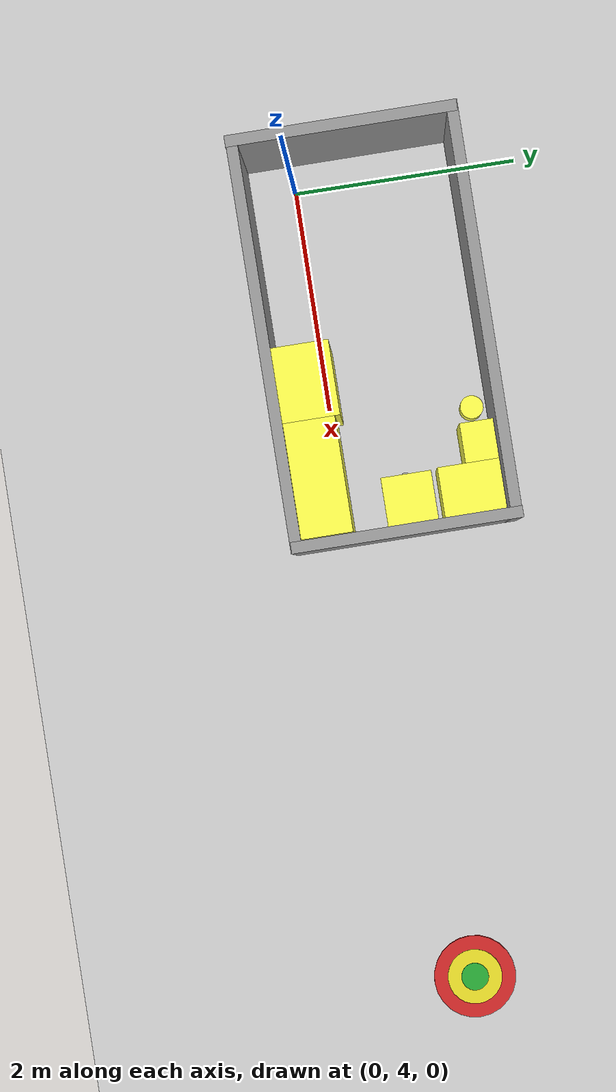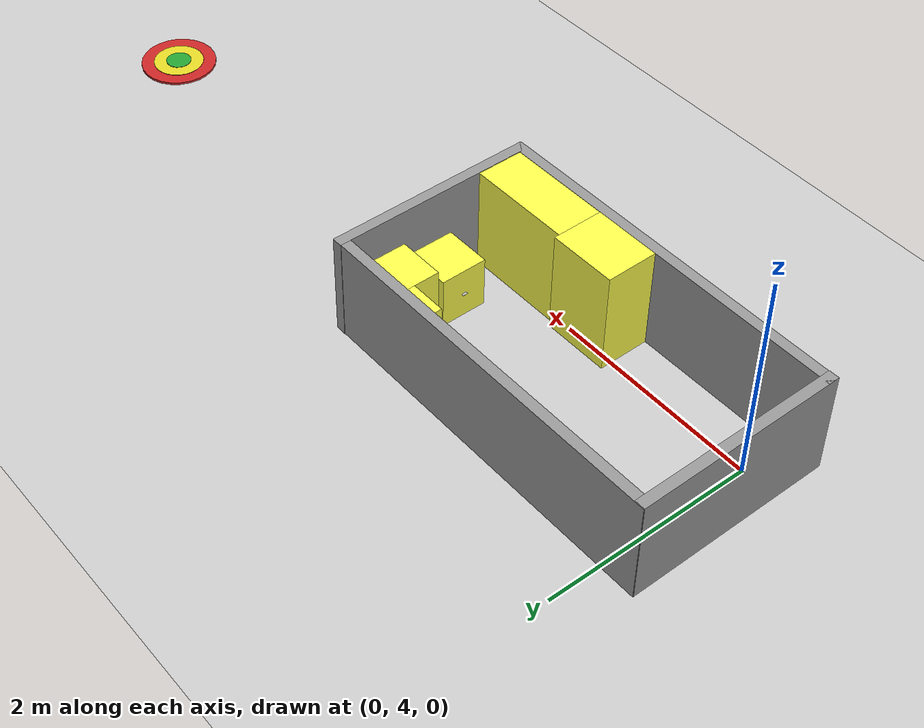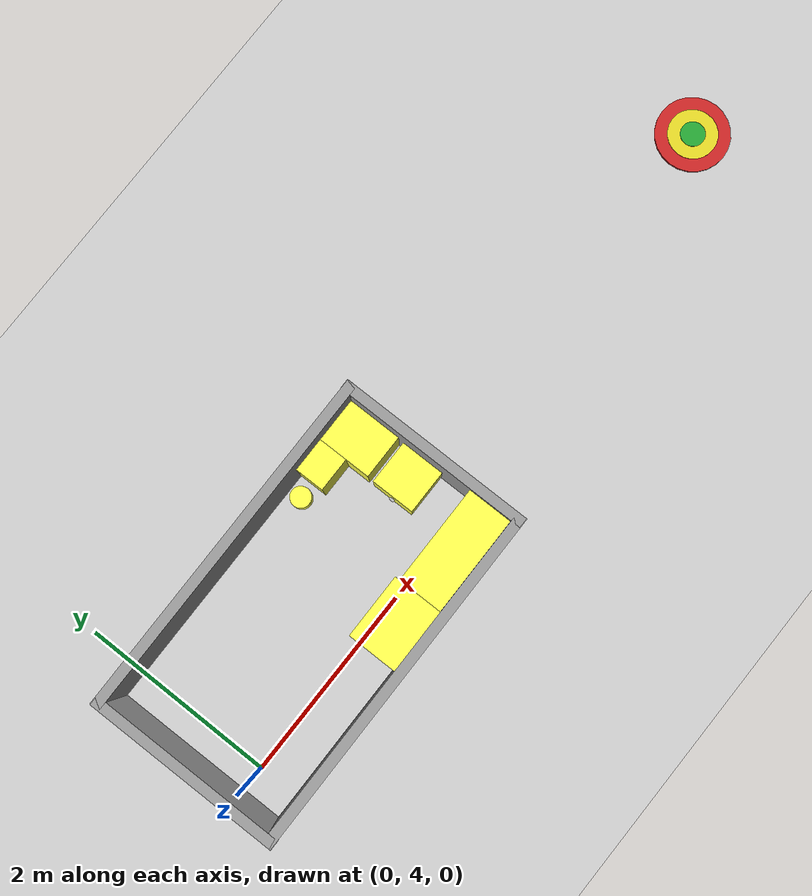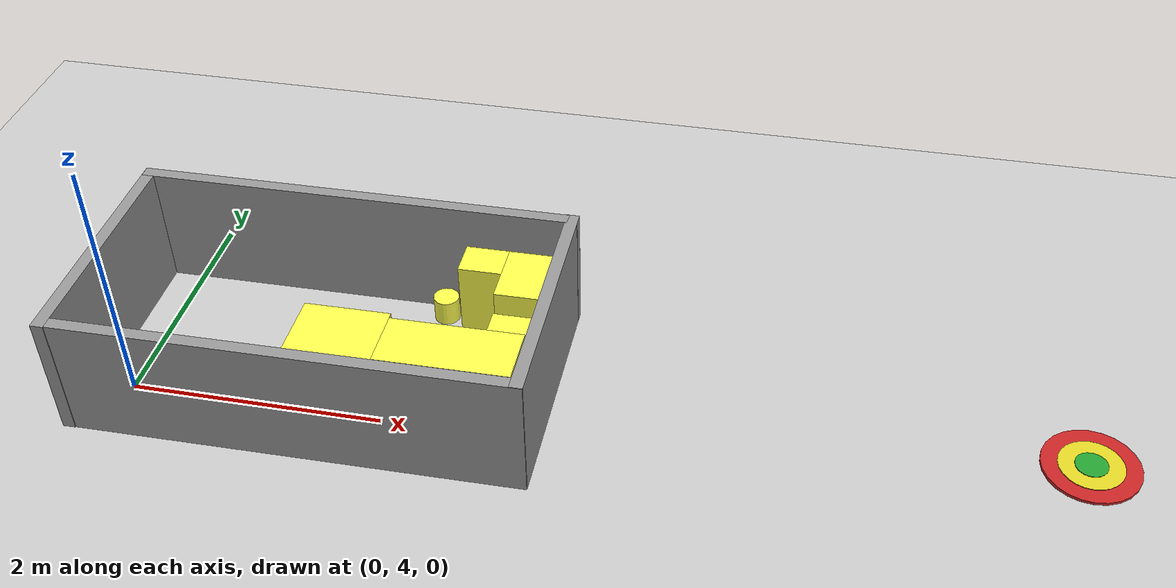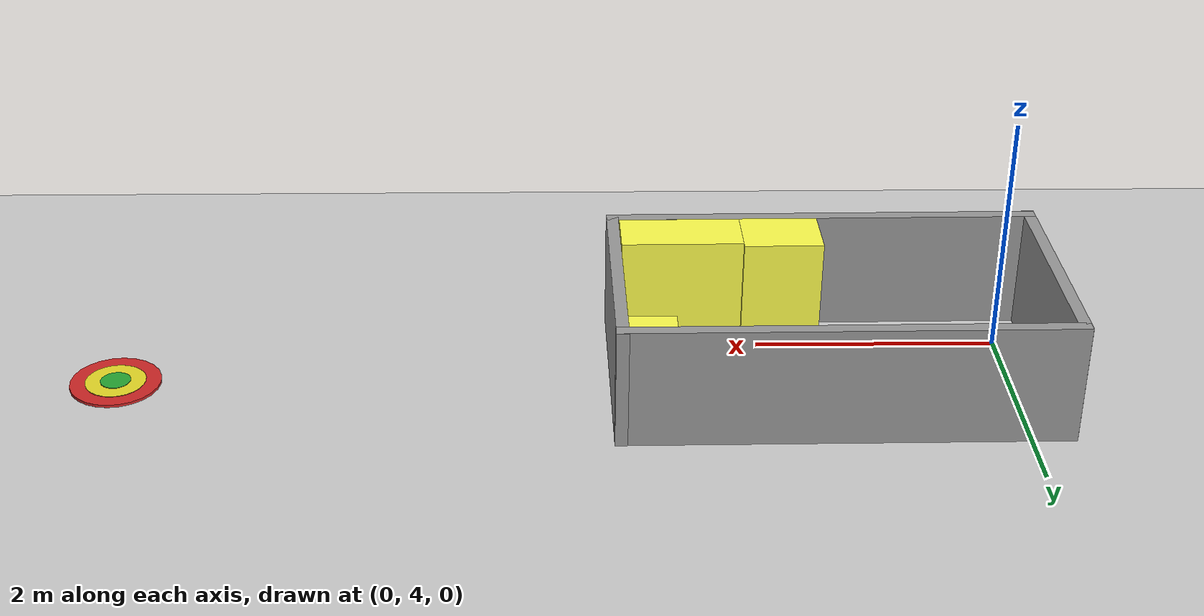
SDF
<sdf version="1.7">
 <world name="default">
  <light name="sun" type="directional">
   <pose>0 0 10 0 -0 0</pose>
   <diffuse>0.8 0.8 0.8 1</diffuse>
   <specular>0.2 0.2 0.2 1</specular>
   <attenuation>
    <range>1000</range>
    <constant>0.9</constant>
    <linear>0.01</linear>
    <quadratic>0.001</quadratic>
   </attenuation>
   <direction>-0.5 0.1 -0.9</direction>
   <spot><inner_angle>0</inner_angle><outer_angle>0</outer_angle><falloff>0</falloff></spot>
  </light>
  <model name="ground_plane">
   <static>1</static>
   <link name="link">
    <collision name="collision">
     <geometry><plane><normal>0 0 1</normal><size>100 100</size></plane></geometry>
     <surface>
      <contact><collide_bitmask>65535</collide_bitmask></contact>
      <friction><ode><mu>100</mu><mu2>50</mu2></ode></friction>
     </surface>
    </collision>
    <visual name="visual">
     <cast_shadows>0</cast_shadows>
     <geometry><plane><normal>0 0 1</normal><size>100 100</size></plane></geometry>
     <material>
      <script><uri>file://media/materials/scripts/gazebo.material</uri><name>Gazebo/Grey</name></script>
     </material>
    </visual>
   </link>
  </model>
  <gravity>0 0 -9.8</gravity>
  <magnetic_field>6e-06 2.3e-05 -4.2e-05</magnetic_field>
  <atmosphere type="adiabatic"/>
  <physics type="ode">
   <max_step_size>0.001</max_step_size>
   <real_time_update_rate>1000</real_time_update_rate>
   <real_time_factor>1</real_time_factor>
  </physics>
  <scene><ambient>0.4 0.4 0.4 1</ambient><background>0.7 0.7 0.7 1</background><shadows>1</shadows></scene>
  <audio><device>default</device></audio>
  <spherical_coordinates>
   <surface_model>EARTH_WGS84</surface_model>
   <latitude_deg>0</latitude_deg>
   <longitude_deg>0</longitude_deg>
   <elevation>0</elevation>
   <heading_deg>0</heading_deg>
  </spherical_coordinates>
  <model name="Target_clone">
   <static>1</static>
   <link name="green">
    <visual name="visual">
     <geometry><cylinder><radius>0.123824</radius><length>0.05</length></cylinder></geometry>
     <material>
      <script><uri>file://media/materials/scripts/gazebo.material</uri><name>Gazebo/Green</name></script>
      <ambient>1 1 1 1</ambient>
     </material>
     <cast_shadows>0</cast_shadows>
    </visual>
   </link>
   <link name="yellow">
    <visual name="visual">
     <geometry><cylinder><radius>0.247647</radius><length>0.04</length></cylinder></geometry>
     <material>
      <script><uri>file://media/materials/scripts/gazebo.material</uri><name>Gazebo/Yellow</name></script>
      <ambient>1 1 1 1</ambient>
     </material>
     <cast_shadows>0</cast_shadows>
    </visual>
   </link>
   <link name="red">
    <visual name="visual">
     <geometry><cylinder><radius>0.371471</radius><length>0.03</length></cylinder></geometry>
     <material>
      <script><uri>file://media/materials/scripts/gazebo.material</uri><name>Gazebo/Red</name></script>
      <ambient>1 1 1 1</ambient>
     </material>
     <cast_shadows>0</cast_shadows>
    </visual>
   </link>
   <pose>7.28043 4.53296 0 0 -0 0</pose>
  </model>
  <model name="maze_d">
   <link name="Wall_11">
    <pose>-3.06869 3.88249 0 0 0 -1.5708</pose>
    <inertial>
     <mass>1</mass>
     <inertia><ixx>1</ixx><ixy>0</ixy><ixz>0</ixz><iyy>1</iyy><iyz>0</iyz><izz>1</izz></inertia>
    </inertial>
    <visual name="Wall_11_Visual">
     <pose>0 0 0.5 0 -0 0</pose>
     <geometry><box><size>2 0.1 1</size></box></geometry>
     <material>
      <script><uri>file://media/materials/scripts/gazebo.material</uri><name>Gazebo/Grey</name></script>
      <ambient>1 1 1 1</ambient>
      <shader type="pixel"><normal_map>__default__</normal_map></shader>
      <diffuse>0.7 0.7 0.7 1</diffuse>
      <specular>0.01 0.01 0.01 1</specular>
      <emissive>0 0 0 1</emissive>
     </material>
    </visual>
    <collision name="Wall_11_Collision">
     <pose>0 0 0.5 0 -0 0</pose>
     <geometry><box><size>2 0.1 1</size></box></geometry>
     <surface>
      <friction>
       <ode><mu>1</mu><mu2>1</mu2><fdir1>0 0 0</fdir1><slip1>0</slip1><slip2>0</slip2></ode>
       <torsional>
        <coefficient>1</coefficient>
        <patch_radius>0</patch_radius>
        <surface_radius>0</surface_radius>
        <use_patch_radius>1</use_patch_radius>
        <ode><slip>0</slip></ode>
       </torsional>
      </friction>
      <bounce><restitution_coefficient>0</restitution_coefficient><threshold>1e+06</threshold></bounce>
      <contact>
       <collide_without_contact>0</collide_without_contact>
       <collide_without_contact_bitmask>1</collide_without_contact_bitmask>
       <collide_bitmask>1</collide_bitmask>
       <ode>
        <soft_cfm>0</soft_cfm>
        <soft_erp>0.2</soft_erp>
        <kp>1e+13</kp>
        <kd>1</kd>
        <max_vel>0.01</max_vel>
        <min_depth>0</min_depth>
       </ode>
       <bullet>
        <split_impulse>1</split_impulse>
        <split_impulse_penetration_threshold>-0.01</split_impulse_penetration_threshold>
        <soft_cfm>0</soft_cfm>
        <soft_erp>0.2</soft_erp>
        <kp>1e+13</kp>
        <kd>1</kd>
       </bullet>
      </contact>
     </surface>
    </collision>
   </link>
   <link name="Wall_11_clone">
    <pose>0.434004 3.89294 0 0 0 -1.5708</pose>
    <inertial>
     <mass>1</mass>
     <inertia><ixx>1</ixx><ixy>0</ixy><ixz>0</ixz><iyy>1</iyy><iyz>0</iyz><izz>1</izz></inertia>
    </inertial>
    <visual name="Wall_11_Visual">
     <pose>0 0 0.5 0 -0 0</pose>
     <geometry><box><size>2 0.1 1</size></box></geometry>
     <material>
      <script><uri>file://media/materials/scripts/gazebo.material</uri><name>Gazebo/Grey</name></script>
      <ambient>1 1 1 1</ambient>
      <shader type="pixel"><normal_map>__default__</normal_map></shader>
      <diffuse>0.7 0.7 0.7 1</diffuse>
      <specular>0.01 0.01 0.01 1</specular>
      <emissive>0 0 0 1</emissive>
     </material>
    </visual>
    <collision name="Wall_11_Collision">
     <pose>0 0 0.5 0 -0 0</pose>
     <geometry><box><size>2 0.1 1</size></box></geometry>
     <surface>
      <friction>
       <ode><mu>1</mu><mu2>1</mu2><fdir1>0 0 0</fdir1><slip1>0</slip1><slip2>0</slip2></ode>
       <torsional>
        <coefficient>1</coefficient>
        <patch_radius>0</patch_radius>
        <surface_radius>0</surface_radius>
        <use_patch_radius>1</use_patch_radius>
        <ode><slip>0</slip></ode>
       </torsional>
      </friction>
      <bounce><restitution_coefficient>0</restitution_coefficient><threshold>1e+06</threshold></bounce>
      <contact>
       <collide_without_contact>0</collide_without_contact>
       <collide_without_contact_bitmask>1</collide_without_contact_bitmask>
       <collide_bitmask>1</collide_bitmask>
       <ode>
        <soft_cfm>0</soft_cfm>
        <soft_erp>0.2</soft_erp>
        <kp>1e+13</kp>
        <kd>1</kd>
        <max_vel>0.01</max_vel>
        <min_depth>0</min_depth>
       </ode>
       <bullet>
        <split_impulse>1</split_impulse>
        <split_impulse_penetration_threshold>-0.01</split_impulse_penetration_threshold>
        <soft_cfm>0</soft_cfm>
        <soft_erp>0.2</soft_erp>
        <kp>1e+13</kp>
        <kd>1</kd>
       </bullet>
      </contact>
     </surface>
    </collision>
   </link>
   <link name="Wall_16_clone">
    <pose>-1.31639 4.83807 0 0 -0 3.14159</pose>
    <inertial>
     <mass>1</mass>
     <inertia><ixx>1</ixx><ixy>0</ixy><ixz>0</ixz><iyy>1</iyy><iyz>0</iyz><izz>1</izz></inertia>
    </inertial>
    <visual name="Wall_16_Visual">
     <pose>0 0 0.5 0 -0 0</pose>
     <geometry><box><size>3.6 0.1 1</size></box></geometry>
     <material>
      <script><uri>file://media/materials/scripts/gazebo.material</uri><name>Gazebo/Grey</name></script>
      <ambient>1 1 1 1</ambient>
      <shader type="pixel"><normal_map>__default__</normal_map></shader>
      <diffuse>0.7 0.7 0.7 1</diffuse>
      <specular>0.01 0.01 0.01 1</specular>
      <emissive>0 0 0 1</emissive>
     </material>
    </visual>
    <collision name="Wall_16_Collision">
     <pose>0 0 0.5 0 -0 0</pose>
     <geometry><box><size>3.6 0.1 1</size></box></geometry>
     <surface>
      <friction>
       <ode><mu>1</mu><mu2>1</mu2><fdir1>0 0 0</fdir1><slip1>0</slip1><slip2>0</slip2></ode>
       <torsional>
        <coefficient>1</coefficient>
        <patch_radius>0</patch_radius>
        <surface_radius>0</surface_radius>
        <use_patch_radius>1</use_patch_radius>
        <ode><slip>0</slip></ode>
       </torsional>
      </friction>
      <bounce><restitution_coefficient>0</restitution_coefficient><threshold>1e+06</threshold></bounce>
      <contact>
       <collide_without_contact>0</collide_without_contact>
       <collide_without_contact_bitmask>1</collide_without_contact_bitmask>
       <collide_bitmask>1</collide_bitmask>
       <ode>
        <soft_cfm>0</soft_cfm>
        <soft_erp>0.2</soft_erp>
        <kp>1e+13</kp>
        <kd>1</kd>
        <max_vel>0.01</max_vel>
        <min_depth>0</min_depth>
       </ode>
       <bullet>
        <split_impulse>1</split_impulse>
        <split_impulse_penetration_threshold>-0.01</split_impulse_penetration_threshold>
        <soft_cfm>0</soft_cfm>
        <soft_erp>0.2</soft_erp>
        <kp>1e+13</kp>
        <kd>1</kd>
       </bullet>
      </contact>
     </surface>
    </collision>
   </link>
   <link name="Wall_16_clone_clone">
    <pose>-1.31935 2.93663 0 0 -0 3.14159</pose>
    <inertial>
     <mass>1</mass>
     <inertia><ixx>1</ixx><ixy>0</ixy><ixz>0</ixz><iyy>1</iyy><iyz>0</iyz><izz>1</izz></inertia>
    </inertial>
    <visual name="Wall_16_Visual">
     <pose>0 0 0.5 0 -0 0</pose>
     <geometry><box><size>3.6 0.1 1</size></box></geometry>
     <material>
      <script><uri>file://media/materials/scripts/gazebo.material</uri><name>Gazebo/Grey</name></script>
      <ambient>1 1 1 1</ambient>
      <shader type="pixel"><normal_map>__default__</normal_map></shader>
      <diffuse>0.7 0.7 0.7 1</diffuse>
      <specular>0.01 0.01 0.01 1</specular>
      <emissive>0 0 0 1</emissive>
     </material>
    </visual>
    <collision name="Wall_16_Collision">
     <pose>0 0 0.5 0 -0 0</pose>
     <geometry><box><size>3.6 0.1 1</size></box></geometry>
     <surface>
      <friction>
       <ode><mu>1</mu><mu2>1</mu2><fdir1>0 0 0</fdir1><slip1>0</slip1><slip2>0</slip2></ode>
       <torsional>
        <coefficient>1</coefficient>
        <patch_radius>0</patch_radius>
        <surface_radius>0</surface_radius>
        <use_patch_radius>1</use_patch_radius>
        <ode><slip>0</slip></ode>
       </torsional>
      </friction>
      <bounce><restitution_coefficient>0</restitution_coefficient><threshold>1e+06</threshold></bounce>
      <contact>
       <collide_without_contact>0</collide_without_contact>
       <collide_without_contact_bitmask>1</collide_without_contact_bitmask>
       <collide_bitmask>1</collide_bitmask>
       <ode>
        <soft_cfm>0</soft_cfm>
        <soft_erp>0.2</soft_erp>
        <kp>1e+13</kp>
        <kd>1</kd>
        <max_vel>0.01</max_vel>
        <min_depth>0</min_depth>
       </ode>
       <bullet>
        <split_impulse>1</split_impulse>
        <split_impulse_penetration_threshold>-0.01</split_impulse_penetration_threshold>
        <soft_cfm>0</soft_cfm>
        <soft_erp>0.2</soft_erp>
        <kp>1e+13</kp>
        <kd>1</kd>
       </bullet>
      </contact>
     </surface>
    </collision>
   </link>
   <link name="link_0">
    <inertial>
     <mass>1</mass>
     <inertia>
      <ixx>0.166667</ixx>
      <ixy>0</ixy>
      <ixz>0</ixz>
      <iyy>0.166667</iyy>
      <iyz>0</iyz>
      <izz>0.166667</izz>
     </inertia>
    </inertial>
    <pose>-2.51216 4.56133 0.5 0 -0 0</pose>
    <visual name="visual">
     <geometry><box><size>1 0.45 1</size></box></geometry>
     <material>
      <lighting>1</lighting>
      <script><uri>file://media/materials/scripts/gazebo.material</uri><name>Gazebo/Grey</name></script>
      <shader type="pixel"><normal_map>__default__</normal_map></shader>
      <ambient>1 1 0.3 1</ambient>
      <diffuse>0.7 0.7 0.7 1</diffuse>
      <specular>0.01 0.01 0.01 1</specular>
      <emissive>0 0 0 1</emissive>
     </material>
    </visual>
    <collision name="collision">
     <geometry><box><size>1 0.45 1</size></box></geometry>
     <surface>
      <friction>
       <ode><mu>1</mu><mu2>1</mu2><fdir1>0 0 0</fdir1><slip1>0</slip1><slip2>0</slip2></ode>
       <torsional>
        <coefficient>1</coefficient>
        <patch_radius>0</patch_radius>
        <surface_radius>0</surface_radius>
        <use_patch_radius>1</use_patch_radius>
        <ode><slip>0</slip></ode>
       </torsional>
      </friction>
      <bounce><restitution_coefficient>0</restitution_coefficient><threshold>1e+06</threshold></bounce>
      <contact>
       <collide_without_contact>0</collide_without_contact>
       <collide_without_contact_bitmask>1</collide_without_contact_bitmask>
       <collide_bitmask>1</collide_bitmask>
       <ode>
        <soft_cfm>0</soft_cfm>
        <soft_erp>0.2</soft_erp>
        <kp>1e+13</kp>
        <kd>1</kd>
        <max_vel>0.01</max_vel>
        <min_depth>0</min_depth>
       </ode>
       <bullet>
        <split_impulse>1</split_impulse>
        <split_impulse_penetration_threshold>-0.01</split_impulse_penetration_threshold>
        <soft_cfm>0</soft_cfm>
        <soft_erp>0.2</soft_erp>
        <kp>1e+13</kp>
        <kd>1</kd>
       </bullet>
      </contact>
     </surface>
    </collision>
   </link>
   <link name="link_1">
    <inertial>
     <mass>1</mass>
     <inertia>
      <ixx>0.166667</ixx>
      <ixy>0</ixy>
      <ixz>0</ixz>
      <iyy>0.166667</iyy>
      <iyz>0</iyz>
      <izz>0.166667</izz>
     </inertia>
    </inertial>
    <pose>-1.6875 4.53905 0.5 0 -0 0</pose>
    <visual name="visual">
     <geometry><box><size>0.65 0.5 1</size></box></geometry>
     <material>
      <lighting>1</lighting>
      <script><uri>file://media/materials/scripts/gazebo.material</uri><name>Gazebo/Grey</name></script>
      <shader type="pixel"><normal_map>__default__</normal_map></shader>
      <ambient>1 1 0.3 1</ambient>
      <diffuse>0.7 0.7 0.7 1</diffuse>
      <specular>0.01 0.01 0.01 1</specular>
      <emissive>0 0 0 1</emissive>
     </material>
    </visual>
    <collision name="collision">
     <geometry><box><size>0.65 0.5 1</size></box></geometry>
     <surface>
      <friction>
       <ode><mu>1</mu><mu2>1</mu2><fdir1>0 0 0</fdir1><slip1>0</slip1><slip2>0</slip2></ode>
       <torsional>
        <coefficient>1</coefficient>
        <patch_radius>0</patch_radius>
        <surface_radius>0</surface_radius>
        <use_patch_radius>1</use_patch_radius>
        <ode><slip>0</slip></ode>
       </torsional>
      </friction>
      <bounce><restitution_coefficient>0</restitution_coefficient><threshold>1e+06</threshold></bounce>
      <contact>
       <collide_without_contact>0</collide_without_contact>
       <collide_without_contact_bitmask>1</collide_without_contact_bitmask>
       <collide_bitmask>1</collide_bitmask>
       <ode>
        <soft_cfm>0</soft_cfm>
        <soft_erp>0.2</soft_erp>
        <kp>1e+13</kp>
        <kd>1</kd>
        <max_vel>0.01</max_vel>
        <min_depth>0</min_depth>
       </ode>
       <bullet>
        <split_impulse>1</split_impulse>
        <split_impulse_penetration_threshold>-0.01</split_impulse_penetration_threshold>
        <soft_cfm>0</soft_cfm>
        <soft_erp>0.2</soft_erp>
        <kp>1e+13</kp>
        <kd>1</kd>
       </bullet>
      </contact>
     </surface>
    </collision>
   </link>
   <link name="link_2">
    <inertial>
     <mass>1</mass>
     <inertia>
      <ixx>0.166667</ixx>
      <ixy>0</ixy>
      <ixz>0</ixz>
      <iyy>0.166667</iyy>
      <iyz>0</iyz>
      <izz>0.166667</izz>
     </inertia>
    </inertial>
    <pose>-2.79472 3.81051 0.250855 0 -0 0</pose>
    <visual name="visual">
     <geometry><box><size>0.45 0.45 0.5</size></box></geometry>
     <material>
      <lighting>1</lighting>
      <script><uri>file://media/materials/scripts/gazebo.material</uri><name>Gazebo/Grey</name></script>
      <shader type="pixel"><normal_map>__default__</normal_map></shader>
      <ambient>1 1 0.3 1</ambient>
      <diffuse>0.7 0.7 0.7 1</diffuse>
      <specular>0.01 0.01 0.01 1</specular>
      <emissive>0 0 0 1</emissive>
     </material>
    </visual>
    <visual name="aruco_panel">
     <pose>0.226 0 0 0 1.5708 0</pose>
     <geometry><plane><normal>-1 0 0</normal><size>0.05 0.05</size></plane></geometry>
     <material>
      <script>
       <uri>file:///home/pc/ros2_ws/src/jetbot_ros2/gazebo/materials/scripts/aruco_tag.material</uri>
       <name>Aruco/GoalTag</name>
      </script>
     </material>
     <cast_shadows>0</cast_shadows>
    </visual>
    <collision name="collision">
     <geometry><box><size>0.45 0.45 0.5</size></box></geometry>
     <surface>
      <friction>
       <ode><mu>1</mu><mu2>1</mu2><fdir1>0 0 0</fdir1><slip1>0</slip1><slip2>0</slip2></ode>
       <torsional>
        <coefficient>1</coefficient>
        <patch_radius>0</patch_radius>
        <surface_radius>0</surface_radius>
        <use_patch_radius>1</use_patch_radius>
        <ode><slip>0</slip></ode>
       </torsional>
      </friction>
      <bounce><restitution_coefficient>0</restitution_coefficient><threshold>1e+06</threshold></bounce>
      <contact>
       <collide_without_contact>0</collide_without_contact>
       <collide_without_contact_bitmask>1</collide_without_contact_bitmask>
       <collide_bitmask>1</collide_bitmask>
       <ode>
        <soft_cfm>0</soft_cfm>
        <soft_erp>0.2</soft_erp>
        <kp>1e+13</kp>
        <kd>1</kd>
        <max_vel>0.01</max_vel>
        <min_depth>0</min_depth>
       </ode>
       <bullet>
        <split_impulse>1</split_impulse>
        <split_impulse_penetration_threshold>-0.01</split_impulse_penetration_threshold>
        <soft_cfm>0</soft_cfm>
        <soft_erp>0.2</soft_erp>
        <kp>1e+13</kp>
        <kd>1</kd>
       </bullet>
      </contact>
     </surface>
    </collision>
   </link>
   <link name="link_2_clone">
    <inertial>
     <mass>1</mass>
     <inertia>
      <ixx>0.166667</ixx>
      <ixy>0</ixy>
      <ixz>0</ixz>
      <iyy>0.166667</iyy>
      <iyz>0</iyz>
      <izz>0.166667</izz>
     </inertia>
    </inertial>
    <pose>-2.79218 3.25815 0.250855 0 -0 0</pose>
    <visual name="visual">
     <geometry><box><size>0.45 0.55 0.8</size></box></geometry>
     <material>
      <lighting>1</lighting>
      <script><uri>file://media/materials/scripts/gazebo.material</uri><name>Gazebo/Grey</name></script>
      <shader type="pixel"><normal_map>__default__</normal_map></shader>
      <ambient>1 1 0.3 1</ambient>
      <diffuse>0.7 0.7 0.7 1</diffuse>
      <specular>0.01 0.01 0.01 1</specular>
      <emissive>0 0 0 1</emissive>
     </material>
    </visual>
    <collision name="collision">
     <geometry><box><size>0.45 0.55 0.8</size></box></geometry>
     <surface>
      <friction>
       <ode><mu>1</mu><mu2>1</mu2><fdir1>0 0 0</fdir1><slip1>0</slip1><slip2>0</slip2></ode>
       <torsional>
        <coefficient>1</coefficient>
        <patch_radius>0</patch_radius>
        <surface_radius>0</surface_radius>
        <use_patch_radius>1</use_patch_radius>
        <ode><slip>0</slip></ode>
       </torsional>
      </friction>
      <bounce><restitution_coefficient>0</restitution_coefficient><threshold>1e+06</threshold></bounce>
      <contact>
       <collide_without_contact>0</collide_without_contact>
       <collide_without_contact_bitmask>1</collide_without_contact_bitmask>
       <collide_bitmask>1</collide_bitmask>
       <ode>
        <soft_cfm>0</soft_cfm>
        <soft_erp>0.2</soft_erp>
        <kp>1e+13</kp>
        <kd>1</kd>
        <max_vel>0.01</max_vel>
        <min_depth>0</min_depth>
       </ode>
       <bullet>
        <split_impulse>1</split_impulse>
        <split_impulse_penetration_threshold>-0.01</split_impulse_penetration_threshold>
        <soft_cfm>0</soft_cfm>
        <soft_erp>0.2</soft_erp>
        <kp>1e+13</kp>
        <kd>1</kd>
       </bullet>
      </contact>
     </surface>
    </collision>
   </link>
   <link name="link_2_clone_clone">
    <inertial>
     <mass>1</mass>
     <inertia>
      <ixx>0.166667</ixx>
      <ixy>0</ixy>
      <ixz>0</ixz>
      <iyy>0.166667</iyy>
      <iyz>0</iyz>
      <izz>0.166667</izz>
     </inertia>
    </inertial>
    <pose>-2.3925 3.13299 0.250855 0 -0 0</pose>
    <visual name="visual">
     <geometry><box><size>0.35 0.3 0.8</size></box></geometry>
     <material>
      <lighting>1</lighting>
      <script><uri>file://media/materials/scripts/gazebo.material</uri><name>Gazebo/Grey</name></script>
      <shader type="pixel"><normal_map>__default__</normal_map></shader>
      <ambient>1 1 0.3 1</ambient>
      <diffuse>0.7 0.7 0.7 1</diffuse>
      <specular>0.01 0.01 0.01 1</specular>
      <emissive>0 0 0 1</emissive>
     </material>
    </visual>
    <collision name="collision">
     <geometry><box><size>0.35 0.3 0.8</size></box></geometry>
     <surface>
      <friction>
       <ode><mu>1</mu><mu2>1</mu2><fdir1>0 0 0</fdir1><slip1>0</slip1><slip2>0</slip2></ode>
       <torsional>
        <coefficient>1</coefficient>
        <patch_radius>0</patch_radius>
        <surface_radius>0</surface_radius>
        <use_patch_radius>1</use_patch_radius>
        <ode><slip>0</slip></ode>
       </torsional>
      </friction>
      <bounce><restitution_coefficient>0</restitution_coefficient><threshold>1e+06</threshold></bounce>
      <contact>
       <collide_without_contact>0</collide_without_contact>
       <collide_without_contact_bitmask>1</collide_without_contact_bitmask>
       <collide_bitmask>1</collide_bitmask>
       <ode>
        <soft_cfm>0</soft_cfm>
        <soft_erp>0.2</soft_erp>
        <kp>1e+13</kp>
        <kd>1</kd>
        <max_vel>0.01</max_vel>
        <min_depth>0</min_depth>
       </ode>
       <bullet>
        <split_impulse>1</split_impulse>
        <split_impulse_penetration_threshold>-0.01</split_impulse_penetration_threshold>
        <soft_cfm>0</soft_cfm>
        <soft_erp>0.2</soft_erp>
        <kp>1e+13</kp>
        <kd>1</kd>
       </bullet>
      </contact>
     </surface>
    </collision>
   </link>
   <link name="link_3">
    <inertial>
     <mass>0.0908378</mass>
     <inertia>
      <ixx>0.00058354</ixx>
      <ixy>0</ixy>
      <ixz>0</ixz>
      <iyy>0.00058354</iyy>
      <iyz>0</iyz>
      <izz>0.0004961</izz>
     </inertia>
    </inertial>
    <pose>-2.05411 3.12715 0.114199 0 -0 0</pose>
    <visual name="visual">
     <geometry><cylinder><radius>0.104512</radius><length>0.210521</length></cylinder></geometry>
     <material>
      <lighting>1</lighting>
      <script><uri>file://media/materials/scripts/gazebo.material</uri><name>Gazebo/Grey</name></script>
      <shader type="pixel"><normal_map>__default__</normal_map></shader>
      <ambient>1 1 0.3 1</ambient>
      <diffuse>0.7 0.7 0.7 1</diffuse>
      <specular>0.01 0.01 0.01 1</specular>
      <emissive>0 0 0 1</emissive>
     </material>
    </visual>
    <collision name="collision">
     <geometry><cylinder><radius>0.104512</radius><length>0.210521</length></cylinder></geometry>
     <surface>
      <friction>
       <ode><mu>1</mu><mu2>1</mu2><fdir1>0 0 0</fdir1><slip1>0</slip1><slip2>0</slip2></ode>
       <torsional>
        <coefficient>1</coefficient>
        <patch_radius>0</patch_radius>
        <surface_radius>0</surface_radius>
        <use_patch_radius>1</use_patch_radius>
        <ode><slip>0</slip></ode>
       </torsional>
      </friction>
      <bounce><restitution_coefficient>0</restitution_coefficient><threshold>1e+06</threshold></bounce>
      <contact>
       <collide_without_contact>0</collide_without_contact>
       <collide_without_contact_bitmask>1</collide_without_contact_bitmask>
       <collide_bitmask>1</collide_bitmask>
       <ode>
        <soft_cfm>0</soft_cfm>
        <soft_erp>0.2</soft_erp>
        <kp>1e+13</kp>
        <kd>1</kd>
        <max_vel>0.01</max_vel>
        <min_depth>0</min_depth>
       </ode>
       <bullet>
        <split_impulse>1</split_impulse>
        <split_impulse_penetration_threshold>-0.01</split_impulse_penetration_threshold>
        <soft_cfm>0</soft_cfm>
        <soft_erp>0.2</soft_erp>
        <kp>1e+13</kp>
        <kd>1</kd>
       </bullet>
      </contact>
     </surface>
    </collision>
   </link>
   <joint name="Wall_11_JOINT_0" type="fixed">
    <parent>Wall_11</parent>
    <child>Wall_16_clone_clone</child>
    <physics>
     <ode><limit><cfm>0</cfm><erp>0.2</erp></limit><suspension><cfm>0</cfm><erp>0.2</erp></suspension></ode>
    </physics>
   </joint>
   <joint name="Wall_11_JOINT_9" type="fixed">
    <parent>Wall_11</parent>
    <child>link_2</child>
    <physics>
     <ode><limit><cfm>0</cfm><erp>0.2</erp></limit><suspension><cfm>0</cfm><erp>0.2</erp></suspension></ode>
    </physics>
   </joint>
   <joint name="Wall_16_clone_JOINT_2" type="fixed">
    <parent>Wall_16_clone</parent>
    <child>Wall_11_clone</child>
    <physics>
     <ode><limit><cfm>0</cfm><erp>0.2</erp></limit><suspension><cfm>0</cfm><erp>0.2</erp></suspension></ode>
    </physics>
   </joint>
   <joint name="Wall_16_clone_JOINT_4" type="fixed">
    <parent>Wall_16_clone</parent>
    <child>Wall_11</child>
    <physics>
     <ode><limit><cfm>0</cfm><erp>0.2</erp></limit><suspension><cfm>0</cfm><erp>0.2</erp></suspension></ode>
    </physics>
   </joint>
   <joint name="Wall_16_clone_clone_JOINT_1" type="fixed">
    <parent>Wall_16_clone_clone</parent>
    <child>Wall_11_clone</child>
    <physics>
     <ode><limit><cfm>0</cfm><erp>0.2</erp></limit><suspension><cfm>0</cfm><erp>0.2</erp></suspension></ode>
    </physics>
   </joint>
   <joint name="link_0_JOINT_7" type="fixed">
    <parent>link_0</parent>
    <child>link_1</child>
    <physics>
     <ode><limit><cfm>0</cfm><erp>0.2</erp></limit><suspension><cfm>0</cfm><erp>0.2</erp></suspension></ode>
    </physics>
   </joint>
   <joint name="link_2_JOINT_6" type="fixed">
    <parent>link_2</parent>
    <child>link_0</child>
    <physics>
     <ode><limit><cfm>0</cfm><erp>0.2</erp></limit><suspension><cfm>0</cfm><erp>0.2</erp></suspension></ode>
    </physics>
   </joint>
   <joint name="link_2_clone_JOINT_5" type="fixed">
    <parent>link_2_clone</parent>
    <child>link_2</child>
    <physics>
     <ode><limit><cfm>0</cfm><erp>0.2</erp></limit><suspension><cfm>0</cfm><erp>0.2</erp></suspension></ode>
    </physics>
   </joint>
   <joint name="link_2_clone_clone_JOINT_4" type="fixed">
    <parent>link_2_clone_clone</parent>
    <child>link_2_clone</child>
    <physics>
     <ode><limit><cfm>0</cfm><erp>0.2</erp></limit><suspension><cfm>0</cfm><erp>0.2</erp></suspension></ode>
    </physics>
   </joint>
   <joint name="link_3_JOINT_3" type="fixed">
    <parent>link_3</parent>
    <child>link_2_clone_clone</child>
    <physics>
     <ode><limit><cfm>0</cfm><erp>0.2</erp></limit><suspension><cfm>0</cfm><erp>0.2</erp></suspension></ode>
    </physics>
   </joint>
   <static>1</static>
   <pose>0.106891 8.38862 0 0 -0 -3.13516</pose>
  </model>
 </world>
</sdf>
